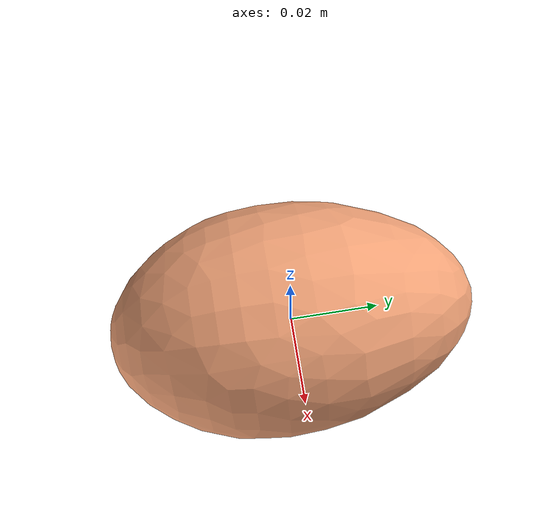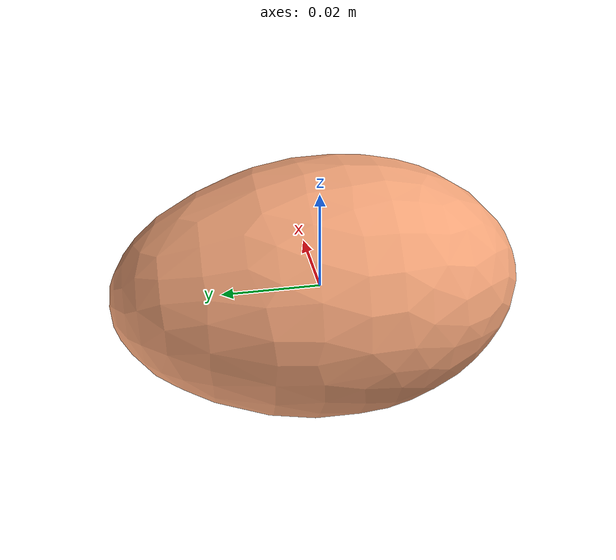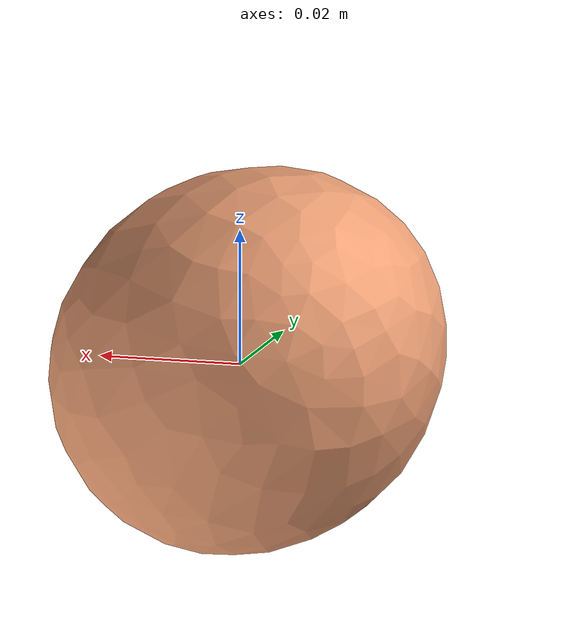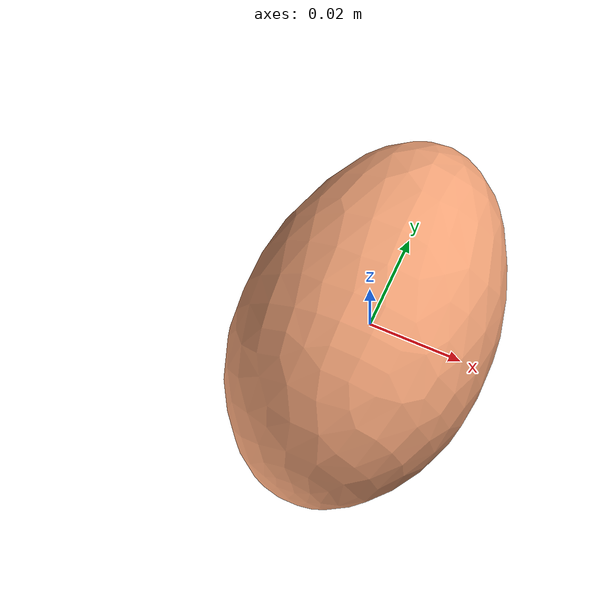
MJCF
<mujoco model="Egg_19">
  <compiler autolimits="true" boundmass="0.01" angle="radian"/>
  <default>
    <default class="/">
      <default class="__VISUAL_MJT__">
        <geom contype="0" conaffinity="0" group="0"/>
      </default>
      <default class="__STRUCTURAL_MJT__">
        <geom contype="8" conaffinity="15" group="4" friction="0.90000000000000002 0.90000000000000002 0.001" solref="0.025000000000000001 1" solimp="0.998 0.998 0.001"/>
      </default>
      <default class="__DYNAMIC_MJT__">
        <geom contype="1" conaffinity="15" group="4" friction="0.90000000000000002 0.90000000000000002 0.001" solref="0.025000000000000001 1" solimp="0.998 0.998 0.001"/>
      </default>
    </default>
  </default>
  <asset>
    <material name="material_Egg1_Mat" class="/" specular="0.5" shininess="0.5" rgba="0.96078439999999998 0.64705880000000005 0.47450979999999998 1"/>
    <mesh name="Egg_19_egg_19" class="/" file="Egg_19_egg_19/Egg_19_egg_19.obj" scale="1 1 1"/>
  </asset>
  <worldbody>
    <body name="Egg_19">
      <joint name="Egg_19_free" class="/" type="free" pos="0 0 0" axis="0 0 1" stiffness="0" range="0 0" armature="0" damping="0.10000000000000001" frictionloss="0"/>
      <body name="Egg_19_egg_19" pos="-0.00014999999999999999 0 -0.0001" quat="1 0 0 0">
        <geom name="Egg_19_egg_19" class="__VISUAL_MJT__" type="mesh" material="material_Egg1_Mat" shellinertia="true" mesh="Egg_19_egg_19"/>
        <geom name="Egg_19_PrimitiveCollider_0" class="__DYNAMIC_MJT__" type="capsule" size="0.024640390649437904 0.015155332162976265" rgba="0 1 0 1" pos="-0 0 0" quat="0.70710678118654757 0.70710678118654746 0 0"/>
      </body>
    </body>
  </worldbody>
</mujoco>
